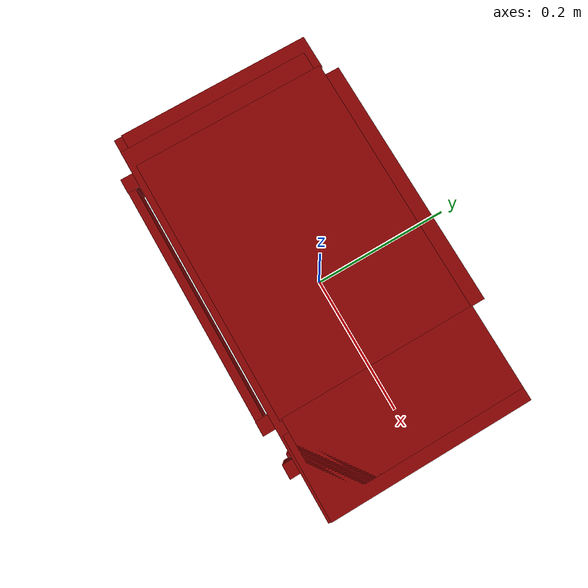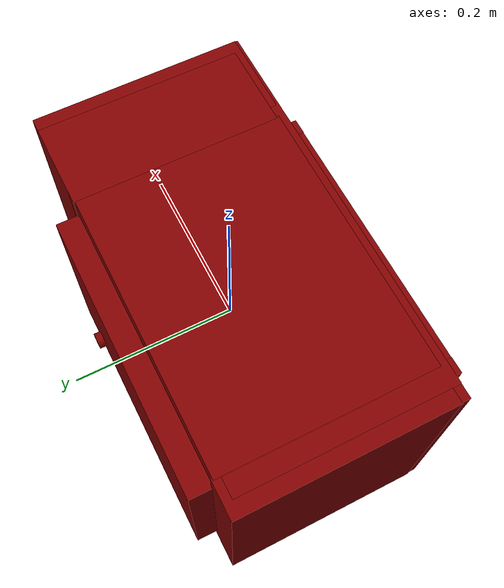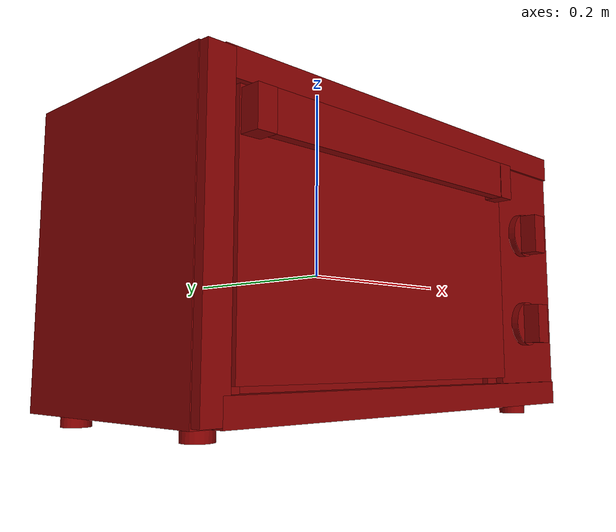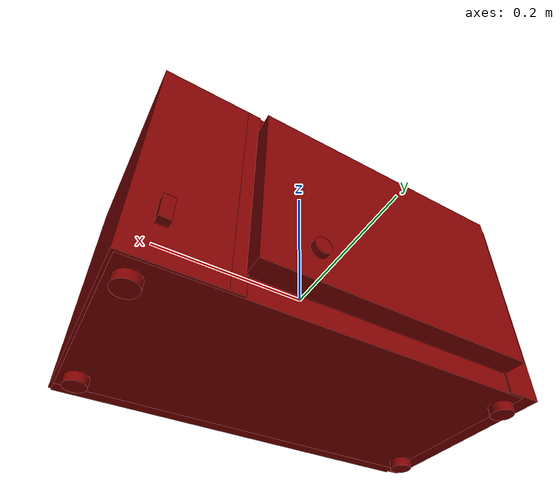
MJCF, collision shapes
<?xml version='1.0' encoding='UTF-8'?>
<mujoco model="model">
  <compiler angle="radian"/>
  <asset>
    <mesh file="visuals/Body001.obj" name="Body001_vis"/>
    <mesh file="visuals/Door001.obj" name="Door001_vis"/>
    <mesh file="visuals/Door001_Clear.obj" name="Door001_Clear_vis"/>
    <mesh file="visuals/Knob001.obj" name="Knob001_vis"/>
    <mesh file="visuals/Knob002.obj" name="Knob002_vis"/>
    <mesh file="visuals/Shelf001.obj" name="Shelf001_vis"/>
    <texture file="visuals/T_BC001.png" name="Body001_material" type="2d"/>
    <material name="Body001_material" rgba="1 1 1 1.0" texture="Body001_material" shininess="0.4472135901451111" specular="0.3103448502657381"/>
    <texture file="visuals/T_BC001.png" name="Door001_material" type="2d"/>
    <material name="Door001_material" rgba="1 1 1 1.0" texture="Door001_material" shininess="0.4472135901451111" specular="0.3103448502657381"/>
    <texture file="visuals/T_BC001.png" name="Door001_Clear_material" type="2d"/>
    <material name="Door001_Clear_material" rgba="1 1 1 0.699999988079071" texture="Door001_Clear_material" shininess="0.5" specular="0.3103448502657381"/>
    <texture file="visuals/T_BC001.png" name="Knob001_material" type="2d"/>
    <material name="Knob001_material" rgba="1 1 1 1.0" texture="Knob001_material" shininess="0.4472135901451111" specular="0.3103448502657381"/>
    <texture file="visuals/T_BC001.png" name="Knob002_material" type="2d"/>
    <material name="Knob002_material" rgba="1 1 1 1.0" texture="Knob002_material" shininess="0.4472135901451111" specular="0.3103448502657381"/>
    <texture file="visuals/T_BC001.png" name="Shelf001_material" type="2d"/>
    <material name="Shelf001_material" rgba="1 1 1 1.0" texture="Shelf001_material" shininess="0.4472135901451111" specular="0.3103448502657381"/>
  </asset>
  <default>
    <default class="visual">
      <geom conaffinity="0" contype="0" group="1" type="mesh"/>
    </default>
    <default class="collision">
      <geom group="0" rgba="0.5 0 0 0.5"/>
    </default>
    <default class="spawn">
      <geom group="0" rgba="1 1 1 0.5" contype="0" conaffinity="0"/>
      <site group="0" rgba="1 1 1 0.5"/>
    </default>
    <default class="region">
      <geom group="1" conaffinity="0" contype="0" rgba="0 1 0 0"/>
    </default>
  </default>
  <worldbody>
    <body>
      <body name="object">
        <geom mesh="Body001_vis" type="mesh" solimp="0.998 0.998 0.001" solref="0.001 1" density="100" friction="0.95 0.3 0.1" class="visual" material="Body001_material"/>
        <geom class="collision" type="box" pos="-0.227955 -0.001078 0.006064" size="0.022148093208670616 0.12436189502477646 0.14288663864135742" quat="1.0 0.0 0.0 0.0"/>
        <geom class="collision" type="box" pos="0.197640 -0.004702 0.006064" size="0.05246393010020256 0.12798750400543213 0.14288769662380219" quat="1.0 0.0 0.0 0.0"/>
        <geom class="collision" type="box" pos="-0.038902 -0.003058 0.127868" size="0.16948284208774567 0.1245630607008934 0.02108347974717617" quat="1.0 0.0 0.0 0.0"/>
        <geom class="collision" type="box" pos="0.009217 0.001146 -0.109063" size="0.23752444982528687 0.1196284070611 0.028542086482048035" quat="1.0 0.0 0.0 0.0"/>
        <geom class="collision" type="box" pos="-0.038902 0.133823 0.004136" size="0.16952092945575714 0.015192290768027306 0.11441542953252792" quat="1.0 0.0 0.0 0.0"/>
        <geom class="collision" type="box" pos="0.215654 0.128310 -0.076968" size="0.006545425392687321 0.005531676113605499 0.014809888787567616" quat="1.0 0.0 0.0 0.0"/>
        <geom class="collision" type="cylinder" pos="0.227133 -0.093192 -0.142851" size="0.013967673294246197 0.006100516766309738" quat="1.0 0.0 0.0 0.0"/>
        <geom class="collision" type="cylinder" pos="0.227133 0.093797 -0.142851" size="0.013967673294246197 0.006100516766309738" quat="1.0 0.0 0.0 0.0"/>
        <geom class="collision" type="cylinder" pos="-0.219368 -0.093192 -0.142851" size="0.013967673294246197 0.006100516766309738" quat="1.0 0.0 0.0 0.0"/>
        <geom class="collision" type="cylinder" pos="-0.219368 0.093797 -0.142851" size="0.013967673294246197 0.006100516766309738" quat="1.0 0.0 0.0 0.0"/>
        <geom class="collision" type="cylinder" pos="0.066426 0.153116 -0.069776" size="0.010296694934368134 0.004649082664400339" quat="0.7071068286895752 0.7071067690849304 1.5700924318127872e-16 5.9269340452702814e-24"/>
        <geom class="collision" type="box" pos="0.008563 -0.011157 0.136204" size="0.2407660186290741 0.1245637983083725 0.012747327797114849" quat="1.0 0.0 0.0 0.0"/>
        <geom class="collision" type="box" pos="-0.235666 -0.011157 0.006405" size="0.013420602306723595 0.12456387281417847 0.14158637821674347" quat="1.0 0.0 0.0 0.0"/>
        <geom class="collision" type="box" pos="0.008865 -0.011157 -0.125013" size="0.23789304494857788 0.12456396222114563 0.012132142670452595" quat="1.0 0.0 0.0 0.0"/>
        <geom class="collision" type="box" pos="0.181338 -0.000776 0.006064" size="0.05288780853152275 0.12406141310930252 0.14288772642612457" quat="1.0 0.0 0.0 0.0"/>
        <body name="Door001">
          <joint axis="1.0 0.0 0.0" pos="-0.037273 -0.135280 -0.107942" limited="true" name="Door001_joint" range="0.0 1.5707963267948966" type="hinge" damping="1" frictionloss="1" armature=".01" stiffness="0.05"/>
          <geom mesh="Door001_vis" type="mesh" solimp="0.998 0.998 0.001" solref="0.001 1" density="100" friction="0.95 0.3 0.1" class="visual" material="Door001_material"/>
          <geom class="collision" type="box" pos="-0.037273 -0.132043 0.006790" size="0.18119259178638458 0.0037460634484887123 0.1135236844420433" quat="1.0 0.0 0.0 0.0"/>
          <geom class="collision" type="box" pos="-0.040125 -0.149668 0.098750" size="0.15746553242206573 0.005251881666481495 0.01837092451751232" quat="1.0 0.0 0.0 0.0"/>
          <geom class="collision" type="box" pos="-0.207326 -0.144877 0.098750" size="0.009648251347243786 0.010504032485187054 0.018370622768998146" quat="1.0 0.0 0.0 0.0"/>
          <geom class="collision" type="box" pos="0.126957 -0.144877 0.098750" size="0.009648260660469532 0.0105040417984128 0.01837063953280449" quat="1.0 0.0 0.0 0.0"/>
          <body name="Door001_Clear">
            <geom mesh="Door001_Clear_vis" type="mesh" solimp="0.998 0.998 0.001" solref="0.001 1" density="100" friction="0.95 0.3 0.1" class="visual" material="Door001_Clear_material"/>
            <geom class="collision" type="box" pos="-0.037209 -0.133189 0.004277" size="0.12574484944343567 0.0007578437798656523 0.06399784237146378" quat="1.0 0.0 0.0 0.0"/>
          </body>
        </body>
        <body name="Knob001">
          <joint axis="0.0 -1.0 0.0" pos="0.189330 -0.145479 0.049683" limited="true" name="Knob001_joint" range="0.0 5.515240436302081" type="hinge" damping="0.05" armature="0.001"/>
          <geom mesh="Knob001_vis" type="mesh" solimp="0.998 0.998 0.001" solref="0.001 1" density="100" friction="0.95 0.3 0.1" class="visual" material="Knob001_material"/>
          <geom class="collision" type="cylinder" pos="0.189425 -0.137020 0.049717" size="0.023427261039614677 0.0037564656231552362" quat="0.7071068286895752 0.7071067690849304 1.5700924318127872e-16 5.9269340452702814e-24"/>
          <geom class="collision" type="box" pos="0.189473 -0.149326 0.049588" size="0.00996814202517271 0.008936640806496143 0.02056089974939823" quat="1.0 0.0 0.0 0.0"/>
        </body>
        <body name="Knob002">
          <joint axis="0.0 -1.0 0.0" pos="0.189330 -0.145479 -0.048878" limited="true" name="Knob002_joint" range="0.0 5.515240436302081" type="hinge" damping="0.05" armature="0.001"/>
          <geom mesh="Knob002_vis" type="mesh" solimp="0.998 0.998 0.001" solref="0.001 1" density="100" friction="0.95 0.3 0.1" class="visual" material="Knob002_material"/>
          <geom class="collision" type="cylinder" pos="0.189425 -0.137020 -0.048845" size="0.023427261039614677 0.0037564656231552362" quat="0.7071068286895752 0.7071067690849304 1.5700924318127872e-16 5.9269340452702814e-24"/>
          <geom class="collision" type="box" pos="0.189473 -0.149326 -0.048973" size="0.00996814202517271 0.008936640806496143 0.02056089974939823" quat="1.0 0.0 0.0 0.0"/>
        </body>
        <body name="Shelf001">
          <joint axis="0.0 -1.0 0.0" pos="-0.039199 0.021636 0.006753" limited="true" name="Shelf001_joint" range="0.0 0.2" type="slide" damping="1" frictionloss="1" armature=".01" stiffness="0.05"/>
          <geom mesh="Shelf001_vis" type="mesh" solimp="0.998 0.998 0.001" solref="0.001 1" density="100" friction="0.95 0.3 0.1" class="visual" material="Shelf001_material"/>
          <geom class="collision" type="box" pos="-0.038757 -0.010998 0.002396" size="0.16601623594760895 0.08875367045402527 0.004450368229299784" quat="1.0 0.0 0.0 0.0"/>
        </body>
        <geom class="region" name="reg_main" type="box" pos="4.999999999866223e-07 0.010987999999999998 0.0" size="0.25010350000000003 0.146777 0.148951"/>
        <geom class="region" name="reg_int" type="box" pos="-0.038249500000000006 0.011384500000000006 0.015331999999999998" size="0.1700705 0.12644850000000002 0.096011"/>
      </body>
    </body>
  </worldbody>
  <actuator>
    <motor name="Door001_joint_actuator" joint="Door001_joint" gear="50"/>
    <motor name="Knob001_joint_actuator" joint="Knob001_joint" gear="50"/>
    <motor name="Knob002_joint_actuator" joint="Knob002_joint" gear="50"/>
    <motor name="Shelf001_joint_actuator" joint="Shelf001_joint" gear="50"/>
  </actuator>
</mujoco>
